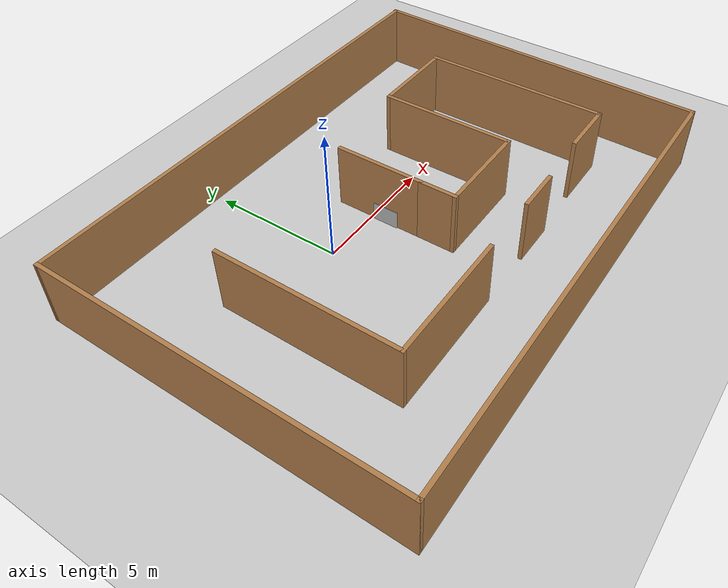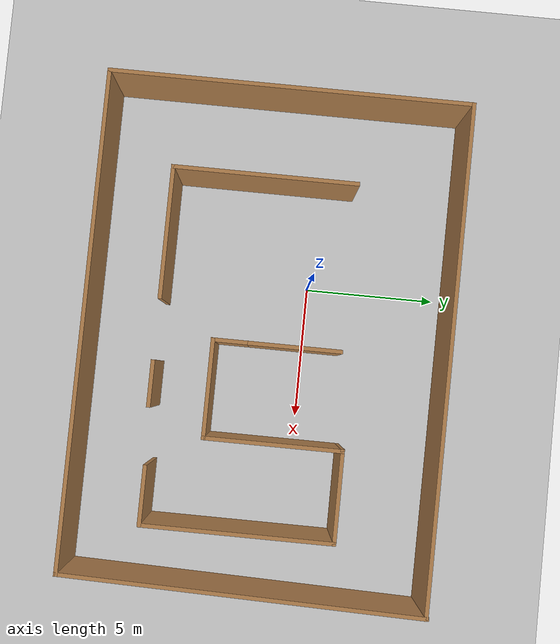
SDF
<sdf version="1.7">
 <world name="default">
  <light name="sun" type="directional">
   <pose>0 0 10 0 -0 0</pose>
   <diffuse>0.8 0.8 0.8 1</diffuse>
   <specular>0.2 0.2 0.2 1</specular>
   <attenuation>
    <range>1000</range>
    <constant>0.9</constant>
    <linear>0.01</linear>
    <quadratic>0.001</quadratic>
   </attenuation>
   <direction>-0.5 0.1 -0.9</direction>
   <spot><inner_angle>0</inner_angle><outer_angle>0</outer_angle><falloff>0</falloff></spot>
  </light>
  <model name="ground_plane">
   <static>1</static>
   <link name="link">
    <collision name="collision">
     <geometry><plane><normal>0 0 1</normal><size>100 100</size></plane></geometry>
     <surface><friction><ode><mu>100</mu><mu2>50</mu2></ode></friction></surface>
    </collision>
    <visual name="visual">
     <cast_shadows>0</cast_shadows>
     <geometry><plane><normal>0 0 1</normal><size>100 100</size></plane></geometry>
     <material>
      <script><uri>file://media/materials/scripts/gazebo.material</uri><name>Gazebo/Grey</name></script>
     </material>
    </visual>
   </link>
  </model>
  <gravity>0 0 -9.8</gravity>
  <magnetic_field>6e-06 2.3e-05 -4.2e-05</magnetic_field>
  <atmosphere type="adiabatic"/>
  <physics type="ode">
   <max_step_size>0.001</max_step_size>
   <real_time_factor>1</real_time_factor>
   <real_time_update_rate>1000</real_time_update_rate>
  </physics>
  <scene><ambient>0.4 0.4 0.4 1</ambient><background>0.7 0.7 0.7 1</background><shadows>1</shadows></scene>
  <audio><device>default</device></audio>
  <spherical_coordinates>
   <surface_model>EARTH_WGS84</surface_model>
   <latitude_deg>0</latitude_deg>
   <longitude_deg>0</longitude_deg>
   <elevation>0</elevation>
   <heading_deg>0</heading_deg>
  </spherical_coordinates>
  <model name="Untitled">
   <pose>2.25874 -1.36255 0 0 -0 0</pose>
   <link name="Wall_32">
    <collision name="Wall_32_Collision">
     <geometry><box><size>13.75 0.15 2.5</size></box></geometry>
     <pose>0 0 1.25 0 -0 0</pose>
    </collision>
    <visual name="Wall_32_Visual">
     <pose>0 0 1.25 0 -0 0</pose>
     <geometry><box><size>13.75 0.15 2.5</size></box></geometry>
     <material>
      <script><uri>file://media/materials/scripts/gazebo.material</uri><name>Gazebo/Wood</name></script>
      <ambient>1 1 1 1</ambient>
     </material>
     <meta><layer>0</layer></meta>
    </visual>
    <pose>-9.45093 0.000569 0 0 -0 -1.5708</pose>
   </link>
   <link name="Wall_33">
    <collision name="Wall_33_Collision">
     <geometry><box><size>18.75 0.15 2.5</size></box></geometry>
     <pose>0 0 1.25 0 -0 0</pose>
    </collision>
    <visual name="Wall_33_Visual">
     <pose>0 0 1.25 0 -0 0</pose>
     <geometry><box><size>18.75 0.15 2.5</size></box></geometry>
     <material>
      <script><uri>file://media/materials/scripts/gazebo.material</uri><name>Gazebo/Wood</name></script>
      <ambient>1 1 1 1</ambient>
     </material>
     <meta><layer>0</layer></meta>
    </visual>
    <pose>-0.150932 -6.79943 0 0 -0 0</pose>
   </link>
   <link name="Wall_34">
    <collision name="Wall_34_Collision">
     <geometry><box><size>13.6466 0.15 2.5</size></box></geometry>
     <pose>0 0 1.25 0 -0 0</pose>
    </collision>
    <visual name="Wall_34_Visual">
     <pose>0 0 1.25 0 -0 0</pose>
     <geometry><box><size>13.6466 0.15 2.5</size></box></geometry>
     <material>
      <script><uri>file://media/materials/scripts/gazebo.material</uri><name>Gazebo/Wood</name></script>
      <ambient>1 1 1 1</ambient>
     </material>
     <meta><layer>0</layer></meta>
    </visual>
    <pose>9.29942 -0.052821 0 0 -0 1.54852</pose>
   </link>
   <link name="Wall_35">
    <collision name="Wall_35_Collision">
     <geometry><box><size>19.0048 0.15 2.5</size></box></geometry>
     <pose>0 0 1.25 0 -0 0</pose>
    </collision>
    <visual name="Wall_35_Visual">
     <pose>0 0 1.25 0 -0 0</pose>
     <geometry><box><size>19.0048 0.15 2.5</size></box></geometry>
     <material>
      <script><uri>file://media/materials/scripts/gazebo.material</uri><name>Gazebo/Wood</name></script>
      <ambient>1 1 1 1</ambient>
     </material>
     <meta><layer>0</layer></meta>
    </visual>
    <pose>-0.023714 6.73561 0 0 -0 3.1347</pose>
   </link>
   <link name="Wall_39">
    <collision name="Wall_39_Collision">
     <geometry><box><size>7 0.15 2.5</size></box></geometry>
     <pose>0 0 1.25 0 -0 0</pose>
    </collision>
    <visual name="Wall_39_Visual">
     <pose>0 0 1.25 0 -0 0</pose>
     <geometry><box><size>7 0.15 2.5</size></box></geometry>
     <material>
      <script><uri>file://media/materials/scripts/gazebo.material</uri><name>Gazebo/Wood</name></script>
      <ambient>1 1 1 1</ambient>
     </material>
     <meta><layer>0</layer></meta>
    </visual>
    <pose>-6.07377 -0.649805 0 0 -0 -1.5708</pose>
   </link>
   <link name="Wall_40">
    <collision name="Wall_40_Collision">
     <geometry><box><size>5 0.15 2.5</size></box></geometry>
     <pose>0 0 1.25 0 -0 0</pose>
    </collision>
    <visual name="Wall_40_Visual">
     <pose>0 0 1.25 0 -0 0</pose>
     <geometry><box><size>5 0.15 2.5</size></box></geometry>
     <material>
      <script><uri>file://media/materials/scripts/gazebo.material</uri><name>Gazebo/Wood</name></script>
      <ambient>1 1 1 1</ambient>
     </material>
     <meta><layer>0</layer></meta>
    </visual>
    <pose>-3.64877 -4.0748 0 0 -0 0</pose>
   </link>
   <link name="Wall_42">
    <collision name="Wall_42_Collision">
     <geometry><box><size>1.75 0.15 2.5</size></box></geometry>
     <pose>0 0 1.25 0 -0 0</pose>
    </collision>
    <visual name="Wall_42_Visual">
     <pose>0 0 1.25 0 -0 0</pose>
     <geometry><box><size>1.75 0.15 2.5</size></box></geometry>
     <material>
      <script><uri>file://media/materials/scripts/gazebo.material</uri><name>Gazebo/Wood</name></script>
      <ambient>1 1 1 1</ambient>
     </material>
     <meta><layer>0</layer></meta>
    </visual>
    <pose>1.97305 -4.08466 0 0 -0 0</pose>
   </link>
   <link name="Wall_44">
    <collision name="Wall_44_Collision">
     <geometry><box><size>2.25 0.15 2.5</size></box></geometry>
     <pose>0 0 1.25 0 -0 0</pose>
    </collision>
    <visual name="Wall_44_Visual">
     <pose>0 0 1.25 0 -0 0</pose>
     <geometry><box><size>2.25 0.15 2.5</size></box></geometry>
     <material>
      <script><uri>file://media/materials/scripts/gazebo.material</uri><name>Gazebo/Wood</name></script>
      <ambient>1 1 1 1</ambient>
     </material>
     <meta><layer>0</layer></meta>
    </visual>
    <pose>6.05754 -3.97913 0 0 -0 0</pose>
   </link>
   <link name="Wall_46">
    <collision name="Wall_46_Collision">
     <geometry><box><size>7.25 0.15 2.5</size></box></geometry>
     <pose>0 0 1.25 0 -0 0</pose>
    </collision>
    <visual name="Wall_46_Visual">
     <pose>0 0 1.25 0 -0 0</pose>
     <geometry><box><size>7.25 0.15 2.5</size></box></geometry>
     <material>
      <script><uri>file://media/materials/scripts/gazebo.material</uri><name>Gazebo/Wood</name></script>
      <ambient>1 1 1 1</ambient>
     </material>
     <meta><layer>0</layer></meta>
    </visual>
    <pose>7.10754 -0.429127 0 0 -0 1.5708</pose>
   </link>
   <link name="Wall_47">
    <collision name="Wall_47_Collision">
     <geometry><box><size>3.5 0.15 2.5</size></box></geometry>
     <pose>0 0 1.25 0 -0 0</pose>
    </collision>
    <visual name="Wall_47_Visual">
     <pose>0 0 1.25 0 -0 0</pose>
     <geometry><box><size>3.5 0.15 2.5</size></box></geometry>
     <material>
      <script><uri>file://media/materials/scripts/gazebo.material</uri><name>Gazebo/Wood</name></script>
      <ambient>1 1 1 1</ambient>
     </material>
     <meta><layer>0</layer></meta>
    </visual>
    <pose>5.43254 3.12087 0 0 -0 3.14159</pose>
   </link>
   <link name="Wall_48">
    <collision name="Wall_48_Collision">
     <geometry><box><size>5.25 0.15 2.5</size></box></geometry>
     <pose>0 0 1.25 0 -0 0</pose>
    </collision>
    <visual name="Wall_48_Visual">
     <pose>0 0 1.25 0 -0 0</pose>
     <geometry><box><size>5.25 0.15 2.5</size></box></geometry>
     <material>
      <script><uri>file://media/materials/scripts/gazebo.material</uri><name>Gazebo/Wood</name></script>
      <ambient>1 1 1 1</ambient>
     </material>
     <meta><layer>0</layer></meta>
    </visual>
    <pose>3.75754 0.570873 0 0 -0 -1.5708</pose>
   </link>
   <link name="Wall_50">
    <collision name="Wall_50_Collision">
     <geometry><box><size>3.75 0.15 2.5</size></box></geometry>
     <pose>0 0 1.25 0 -0 0</pose>
    </collision>
    <visual name="Wall_50_Visual">
     <pose>0 0 1.25 0 -0 0</pose>
     <geometry><box><size>3.75 0.15 2.5</size></box></geometry>
     <material>
      <script><uri>file://media/materials/scripts/gazebo.material</uri><name>Gazebo/Wood</name></script>
      <ambient>1 1 1 1</ambient>
     </material>
     <meta><layer>0</layer></meta>
    </visual>
    <pose>1.95754 -1.97913 0 0 -0 3.14159</pose>
   </link>
   <link name="Wall_51">
    <collision name="Wall_51_Collision">
     <geometry><box><size>1.5 0.15 2.5</size></box></geometry>
     <pose>0 0 1.25 0 -0 0</pose>
    </collision>
    <visual name="Wall_51_Visual">
     <pose>0 0 1.25 0 -0 0</pose>
     <geometry><box><size>1.5 0.15 2.5</size></box></geometry>
     <material>
      <script><uri>file://media/materials/scripts/gazebo.material</uri><name>Gazebo/Wood</name></script>
      <ambient>1 1 1 1</ambient>
     </material>
     <meta><layer>0</layer></meta>
    </visual>
    <pose>0.157539 -1.30413 0 0 -0 1.5708</pose>
   </link>
   <link name="Wall_52">
    <collision name="Wall_52_Collision">
     <geometry><box><size>3.5 0.15 2.5</size></box></geometry>
     <pose>0 0 1.25 0 -0 0</pose>
    </collision>
    <visual name="Wall_52_Visual">
     <pose>0 0 1.25 0 -0 0</pose>
     <geometry><box><size>3.5 0.15 2.5</size></box></geometry>
     <material>
      <script><uri>file://media/materials/scripts/gazebo.material</uri><name>Gazebo/Wood</name></script>
      <ambient>1 1 1 1</ambient>
     </material>
     <meta><layer>0</layer></meta>
    </visual>
    <pose>0.157539 1.04587 0 0 -0 1.5708</pose>
   </link>
   <static>1</static>
  </model>
  <model name="Apriltag36_11_00000">
   <link name="main">
    <visual name="main_Visual">
     <geometry><box><size>1 1 0.01</size></box></geometry>
     <material>
      <script>
       <uri>model://Apriltag36_11_00000/materials/scripts</uri>
       <uri>model://Apriltag36_11_00000/materials/textures</uri>
       <name>Apriltag36_11_00000</name>
      </script>
     </material>
    </visual>
   </link>
   <static>1</static>
   <pose>2.32136 -0.585413 0.2 0 -1.57 0</pose>
  </model>
 </world>
</sdf>
